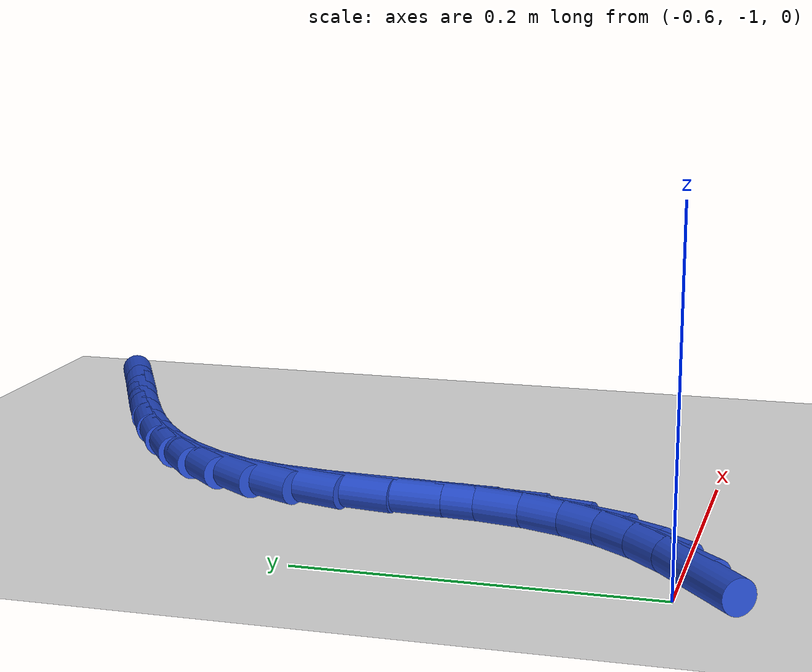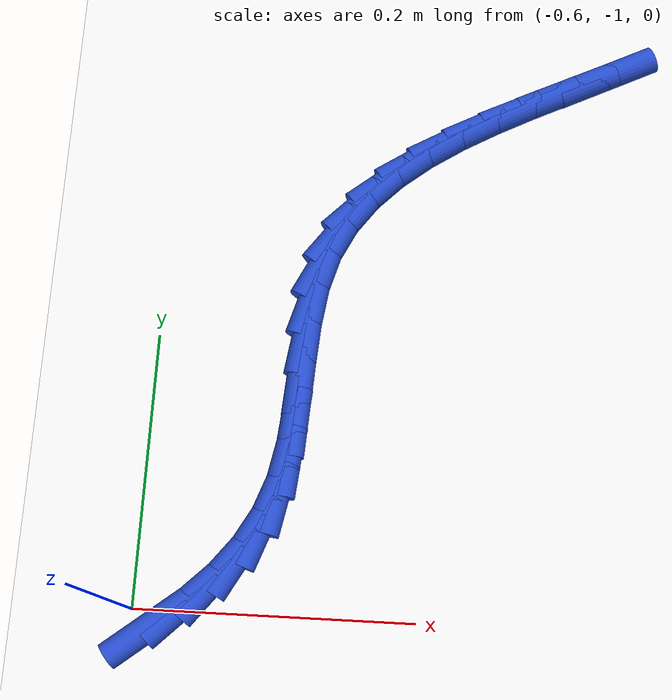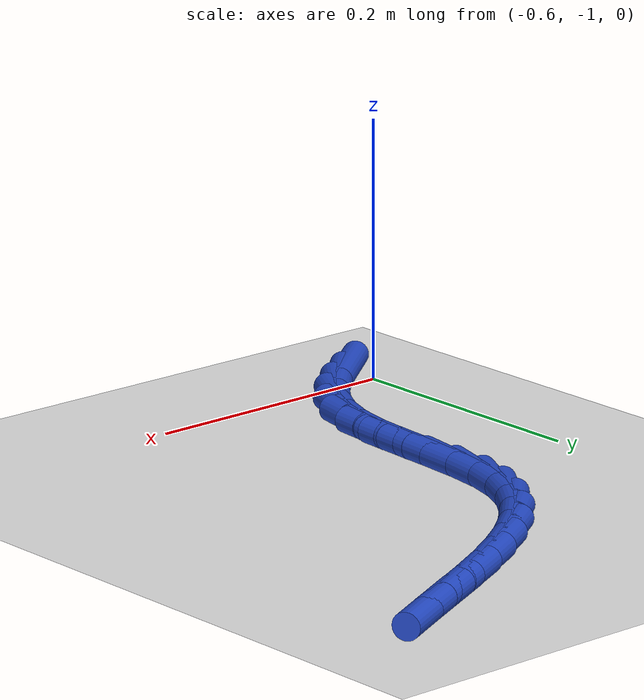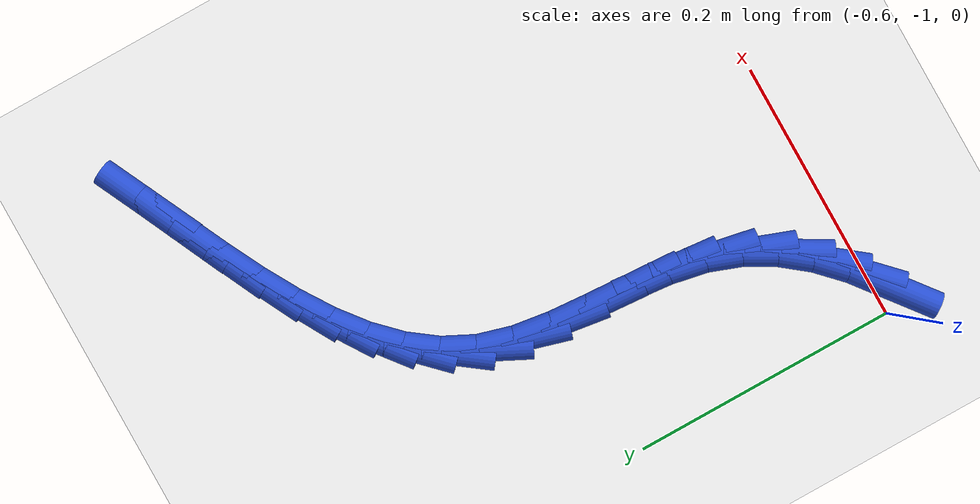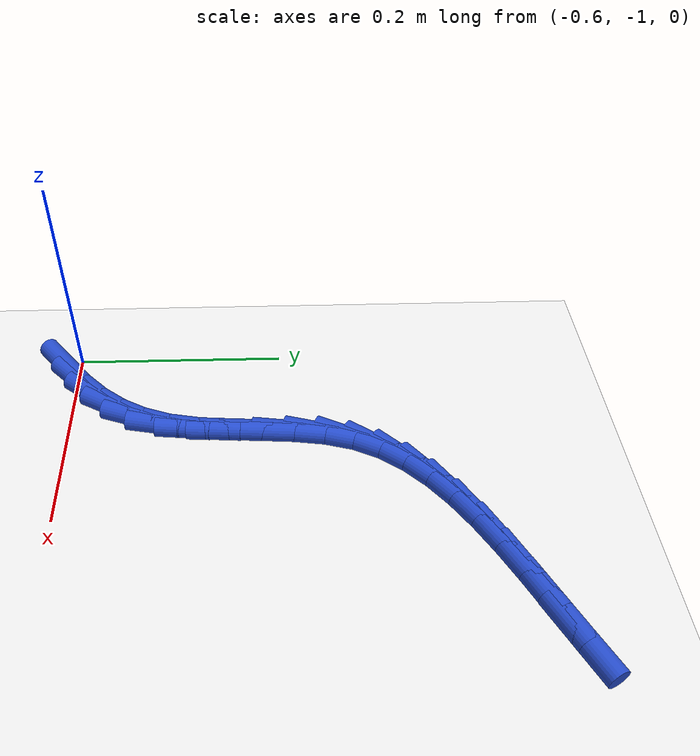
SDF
<sdf version="1.6">
 <world name="default">
  <model name="ground_plane">
   <static>1</static>
   <link name="link">
    <collision name="collision">
     <geometry><plane><normal>0 0 1</normal><size>100 100</size></plane></geometry>
     <surface><friction><ode><mu>100</mu><mu2>50</mu2></ode></friction></surface>
    </collision>
    <visual name="visual">
     <cast_shadows>0</cast_shadows>
     <geometry><plane><normal>0 0 1</normal><size>100 100</size></plane></geometry>
     <material>
      <script><uri>file://media/materials/scripts/gazebo.material</uri><name>Gazebo/WhiteGlow</name></script>
     </material>
    </visual>
   </link>
  </model>
  <model name="line">
   <link name="link_207">
    <pose>-0.5810312145714144 -1.0091556290802868 0.01 0 1.57 0.6665024851058584</pose>
    <collision name="collision">
     <geometry><cylinder><radius>0.01</radius><length>0.08</length></cylinder></geometry>
    </collision>
    <visual name="visual">
     <material>
      <script><name>Gazebo/Blue</name><uri>file://media/materials/scripts/gazebo.material</uri></script>
     </material>
     <geometry><cylinder><radius>0.01</radius><length>0.08</length></cylinder></geometry>
    </visual>
   </link>
   <link name="link_208">
    <pose>-0.5590184669379537 -0.991840906018573 0.01 0 1.57 0.7739153320597285</pose>
    <collision name="collision">
     <geometry><cylinder><radius>0.01</radius><length>0.08</length></cylinder></geometry>
    </collision>
    <visual name="visual">
     <material>
      <script><name>Gazebo/Blue</name><uri>file://media/materials/scripts/gazebo.material</uri></script>
     </material>
     <geometry><cylinder><radius>0.01</radius><length>0.08</length></cylinder></geometry>
    </visual>
   </link>
   <link name="link_209">
    <pose>-0.5398169804424463 -0.9730754071747318 0.01 0 1.57 0.9055922111497771</pose>
    <collision name="collision">
     <geometry><cylinder><radius>0.01</radius><length>0.08</length></cylinder></geometry>
    </collision>
    <visual name="visual">
     <material>
      <script><name>Gazebo/Blue</name><uri>file://media/materials/scripts/gazebo.material</uri></script>
     </material>
     <geometry><cylinder><radius>0.01</radius><length>0.08</length></cylinder></geometry>
    </visual>
   </link>
   <link name="link_210">
    <pose>-0.5237100138198535 -0.9525433137027634 0.01 0 1.57 1.0581204533748627</pose>
    <collision name="collision">
     <geometry><cylinder><radius>0.01</radius><length>0.08</length></cylinder></geometry>
    </collision>
    <visual name="visual">
     <material>
      <script><name>Gazebo/Blue</name><uri>file://media/materials/scripts/gazebo.material</uri></script>
     </material>
     <geometry><cylinder><radius>0.01</radius><length>0.08</length></cylinder></geometry>
    </visual>
   </link>
   <link name="link_211">
    <pose>-0.510980825805138 -0.9299288067566679 0.01 0 1.57 1.2229928481280825</pose>
    <collision name="collision">
     <geometry><cylinder><radius>0.01</radius><length>0.08</length></cylinder></geometry>
    </collision>
    <visual name="visual">
     <material>
      <script><name>Gazebo/Blue</name><uri>file://media/materials/scripts/gazebo.material</uri></script>
     </material>
     <geometry><cylinder><radius>0.01</radius><length>0.08</length></cylinder></geometry>
    </visual>
   </link>
   <link name="link_212">
    <pose>-0.5019126751332624 -0.9049160674904457 0.01 0 1.57 1.378759967032445</pose>
    <collision name="collision">
     <geometry><cylinder><radius>0.01</radius><length>0.08</length></cylinder></geometry>
    </collision>
    <visual name="visual">
     <material>
      <script><name>Gazebo/Blue</name><uri>file://media/materials/scripts/gazebo.material</uri></script>
     </material>
     <geometry><cylinder><radius>0.01</radius><length>0.08</length></cylinder></geometry>
    </visual>
   </link>
   <link name="link_213">
    <pose>-0.4965551021912893 -0.8773611207669444 0.01 0 1.57 1.4763453308705246</pose>
    <collision name="collision">
     <geometry><cylinder><radius>0.01</radius><length>0.08</length></cylinder></geometry>
    </collision>
    <visual name="visual">
     <material>
      <script><name>Gazebo/Blue</name><uri>file://media/materials/scripts/gazebo.material</uri></script>
     </material>
     <geometry><cylinder><radius>0.01</radius><length>0.08</length></cylinder></geometry>
    </visual>
   </link>
   <link name="link_214">
    <pose>-0.493772801678232 -0.8479911608684269 0.01 0 1.57 1.5139734139313568</pose>
    <collision name="collision">
     <geometry><cylinder><radius>0.01</radius><length>0.08</length></cylinder></geometry>
    </collision>
    <visual name="visual">
     <material>
      <script><name>Gazebo/Blue</name><uri>file://media/materials/scripts/gazebo.material</uri></script>
     </material>
     <geometry><cylinder><radius>0.01</radius><length>0.08</length></cylinder></geometry>
    </visual>
   </link>
   <link name="link_215">
    <pose>-0.492055902898274 -0.8178087849594345 0.01 0 1.57 1.4988512593146153</pose>
    <collision name="collision">
     <geometry><cylinder><radius>0.01</radius><length>0.08</length></cylinder></geometry>
    </collision>
    <visual name="visual">
     <material>
      <script><name>Gazebo/Blue</name><uri>file://media/materials/scripts/gazebo.material</uri></script>
     </material>
     <geometry><cylinder><radius>0.01</radius><length>0.08</length></cylinder></geometry>
    </visual>
   </link>
   <link name="link_216">
    <pose>-0.48989438944501784 -0.7878166973396449 0.01 0 1.57 1.4288316200950566</pose>
    <collision name="collision">
     <geometry><cylinder><radius>0.01</radius><length>0.08</length></cylinder></geometry>
    </collision>
    <visual name="visual">
     <material>
      <script><name>Gazebo/Blue</name><uri>file://media/materials/scripts/gazebo.material</uri></script>
     </material>
     <geometry><cylinder><radius>0.01</radius><length>0.08</length></cylinder></geometry>
    </visual>
   </link>
   <link name="link_217">
    <pose>-0.4857782449120662 -0.7590176023087355 0.01 0 1.57 1.2935356150488029</pose>
    <collision name="collision">
     <geometry><cylinder><radius>0.01</radius><length>0.08</length></cylinder></geometry>
    </collision>
    <visual name="visual">
     <material>
      <script><name>Gazebo/Blue</name><uri>file://media/materials/scripts/gazebo.material</uri></script>
     </material>
     <geometry><cylinder><radius>0.01</radius><length>0.08</length></cylinder></geometry>
    </visual>
   </link>
   <link name="link_218">
    <pose>-0.4782056093839233 -0.7324087521819983 0.01 0 1.57 1.1103611839849163</pose>
    <collision name="collision">
     <geometry><cylinder><radius>0.01</radius><length>0.08</length></cylinder></geometry>
    </collision>
    <visual name="visual">
     <material>
      <script><name>Gazebo/Blue</name><uri>file://media/materials/scripts/gazebo.material</uri></script>
     </material>
     <geometry><cylinder><radius>0.01</radius><length>0.08</length></cylinder></geometry>
    </visual>
   </link>
   <link name="link_219">
    <pose>-0.4663612081346402 -0.7085284700884762 0.01 0 1.57 0.9370736448720292</pose>
    <collision name="collision">
     <geometry><cylinder><radius>0.01</radius><length>0.08</length></cylinder></geometry>
    </collision>
    <visual name="visual">
     <material>
      <script><name>Gazebo/Blue</name><uri>file://media/materials/scripts/gazebo.material</uri></script>
     </material>
     <geometry><cylinder><radius>0.01</radius><length>0.08</length></cylinder></geometry>
    </visual>
   </link>
   <link name="link_220">
    <pose>-0.45062617802356375 -0.687115370390376 0.01 0 1.57 0.7896451795397678</pose>
    <collision name="collision">
     <geometry><cylinder><radius>0.01</radius><length>0.08</length></cylinder></geometry>
    </collision>
    <visual name="visual">
     <material>
      <script><name>Gazebo/Blue</name><uri>file://media/materials/scripts/gazebo.material</uri></script>
     </material>
     <geometry><cylinder><radius>0.01</radius><length>0.08</length></cylinder></geometry>
    </visual>
   </link>
   <link name="link_221">
    <pose>-0.43150174331735963 -0.6678277982903614 0.01 0 1.57 0.6717868752527403</pose>
    <collision name="collision">
     <geometry><cylinder><radius>0.01</radius><length>0.08</length></cylinder></geometry>
    </collision>
    <visual name="visual">
     <material>
      <script><name>Gazebo/Blue</name><uri>file://media/materials/scripts/gazebo.material</uri></script>
     </material>
     <geometry><cylinder><radius>0.01</radius><length>0.08</length></cylinder></geometry>
    </visual>
   </link>
   <link name="link_222">
    <pose>-0.40948912828269296 -0.6503240989910961 0.01 0 1.57 0.5821662804849794</pose>
    <collision name="collision">
     <geometry><cylinder><radius>0.01</radius><length>0.08</length></cylinder></geometry>
    </collision>
    <visual name="visual">
     <material>
      <script><name>Gazebo/Blue</name><uri>file://media/materials/scripts/gazebo.material</uri></script>
     </material>
     <geometry><cylinder><radius>0.01</radius><length>0.08</length></cylinder></geometry>
    </visual>
   </link>
   <link name="link_223">
    <pose>-0.3850895571862297 -0.6342626176952447 0.01 0 1.57 0.5174450677010877</pose>
    <collision name="collision">
     <geometry><cylinder><radius>0.01</radius><length>0.08</length></cylinder></geometry>
    </collision>
    <visual name="visual">
     <material>
      <script><name>Gazebo/Blue</name><uri>file://media/materials/scripts/gazebo.material</uri></script>
     </material>
     <geometry><cylinder><radius>0.01</radius><length>0.08</length></cylinder></geometry>
    </visual>
   </link>
   <link name="link_224">
    <pose>-0.3588042542946354 -0.6193016996054704 0.01 0 1.57 0.47420505003431884</pose>
    <collision name="collision">
     <geometry><cylinder><radius>0.01</radius><length>0.08</length></cylinder></geometry>
    </collision>
    <visual name="visual">
     <material>
      <script><name>Gazebo/Blue</name><uri>file://media/materials/scripts/gazebo.material</uri></script>
     </material>
     <geometry><cylinder><radius>0.01</radius><length>0.08</length></cylinder></geometry>
    </visual>
   </link>
   <link name="link_225">
    <pose>-0.3311344438745754 -0.6050996899244373 0.01 0 1.57 0.44977392658277165</pose>
    <collision name="collision">
     <geometry><cylinder><radius>0.01</radius><length>0.08</length></cylinder></geometry>
    </collision>
    <visual name="visual">
     <material>
      <script><name>Gazebo/Blue</name><uri>file://media/materials/scripts/gazebo.material</uri></script>
     </material>
     <geometry><cylinder><radius>0.01</radius><length>0.08</length></cylinder></geometry>
    </visual>
   </link>
   <link name="link_226">
    <pose>-0.30258135019271537 -0.5913149338548092 0.01 0 1.57 0.4424598112341568</pose>
    <collision name="collision">
     <geometry><cylinder><radius>0.01</radius><length>0.08</length></cylinder></geometry>
    </collision>
    <visual name="visual">
     <material>
      <script><name>Gazebo/Blue</name><uri>file://media/materials/scripts/gazebo.material</uri></script>
     </material>
     <geometry><cylinder><radius>0.01</radius><length>0.08</length></cylinder></geometry>
    </visual>
   </link>
   <link name="link_227">
    <pose>-0.27364619751572095 -0.5776057765992498 0.01 0 1.57 0.45156057138389083</pose>
    <collision name="collision">
     <geometry><cylinder><radius>0.01</radius><length>0.08</length></cylinder></geometry>
    </collision>
    <visual name="visual">
     <material>
      <script><name>Gazebo/Blue</name><uri>file://media/materials/scripts/gazebo.material</uri></script>
     </material>
     <geometry><cylinder><radius>0.01</radius><length>0.08</length></cylinder></geometry>
    </visual>
   </link>
  </model>
 </world>
</sdf>
